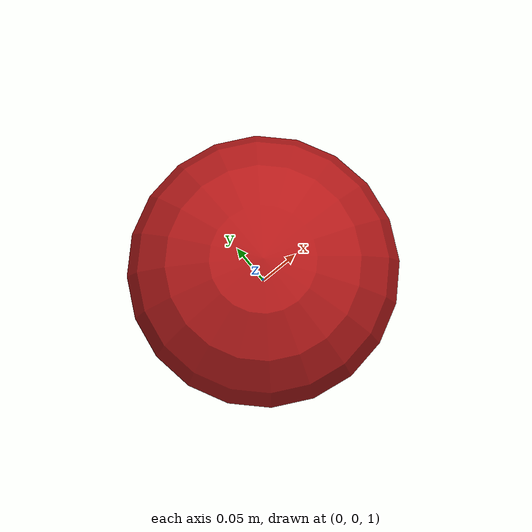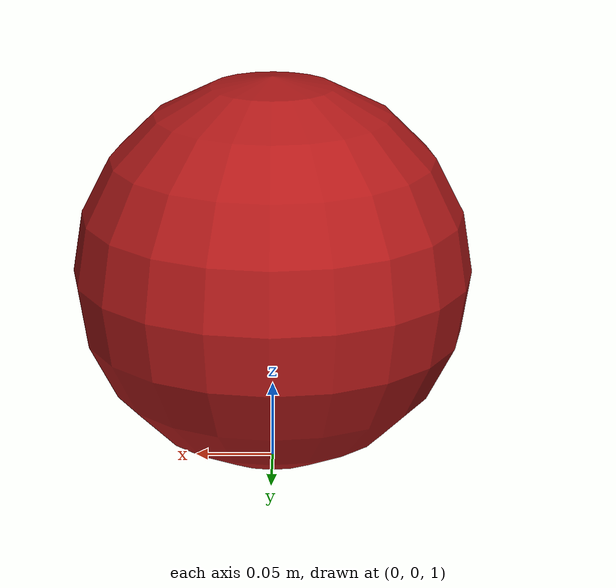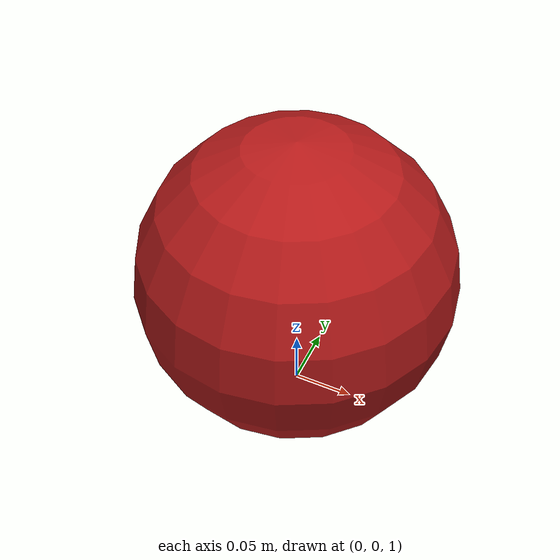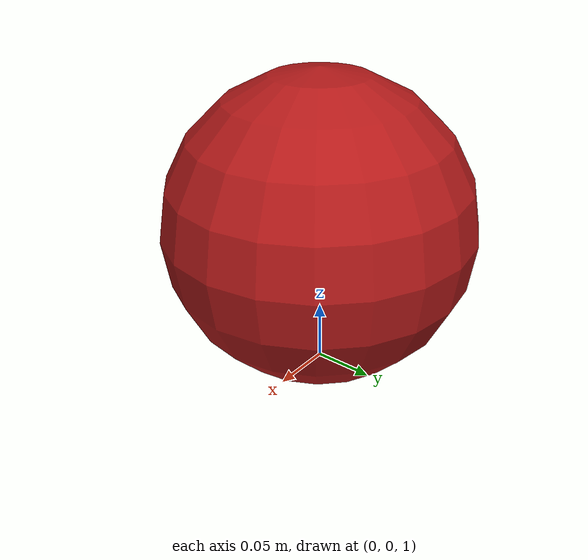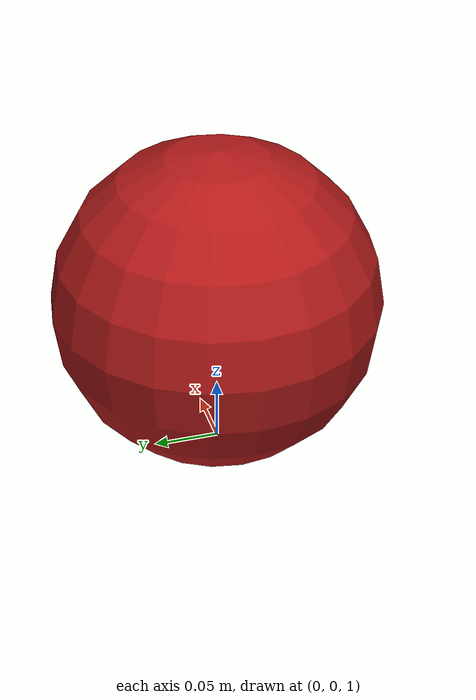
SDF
<?xml version="1.0" ?>
<sdf version="1.4">
  <world name="default">
    <gravity>0.0 0.0 0.0</gravity>
    <include>
      <uri>model://sun</uri>
    </include>
    <include>
      <uri>model://ball</uri>
      <name>ball</name>
      <pose>0 0 1.0 0 0 0</pose>
    </include>
  </world>
</sdf>

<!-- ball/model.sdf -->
<sdf version="1.5">
  <model name="ball">
    <pose>0 0 0 0 0 0</pose>
    <link name="link">
      <pose>0 0 0.127 0 0 0</pose>
      <inertial>
        <mass>0.15</mass>
        <inertia>
          <ixx>0.003226667</ixx>
          <ixy>0</ixy>
          <ixz>0</ixz>
          <iyy>0.003226667</iyy>
          <iyz>0</iyz>
          <izz>0.003226667</izz>
        </inertia>
      </inertial>

      <visual name="visual">
        <geometry>
          <sphere>
            <radius>0.127</radius>
          </sphere>
        </geometry>
        <material>
          <ambient>0.6 0.1 0.1 1</ambient>
          <diffuse>0.7 0.1 0.1 1</diffuse>
          <specular>0 0 0 0</specular>
          <emissive>0.0 0 0 1</emissive>
        </material>
      </visual>

      <collision name="collision">
        <geometry>
          <sphere>
            <radius>0.127</radius>
          </sphere>
        </geometry>
        <surface>
          <bounce>
            <restitution_coefficient>0.6</restitution_coefficient>
            <threshold>0</threshold>
          </bounce>
          <contact>
            <ode>
              <max_vel>5</max_vel>
              <min_depth>0.001</min_depth>
            </ode>
          </contact>
        </surface>
      </collision>
    </link>
  </model>
</sdf>
